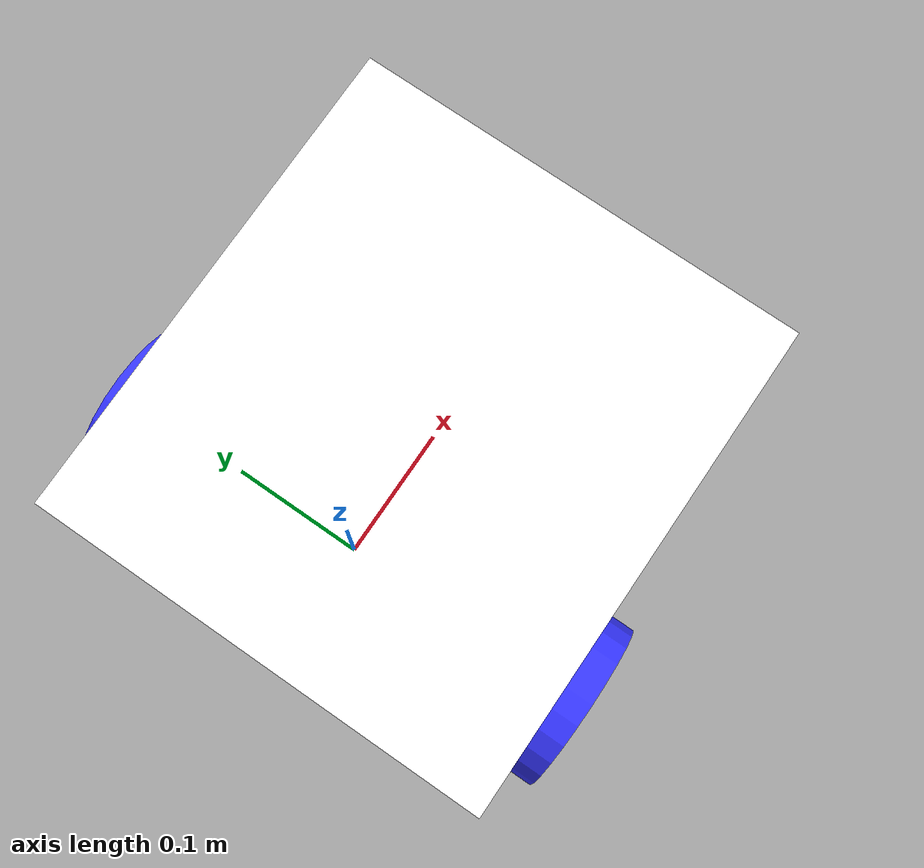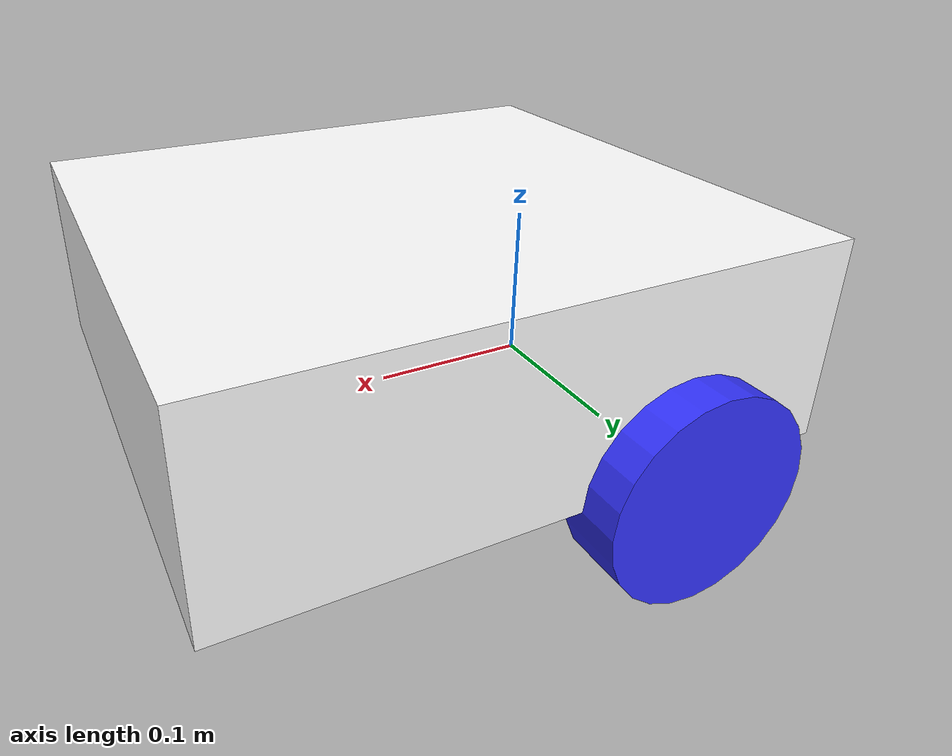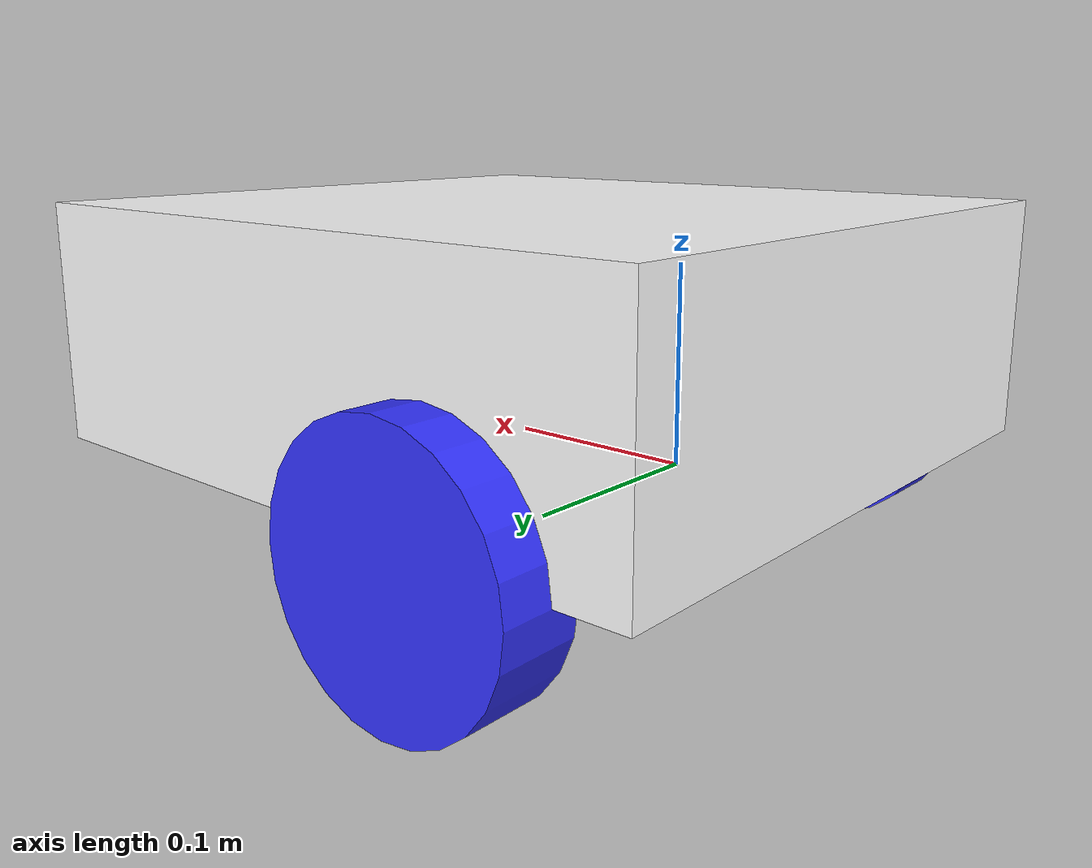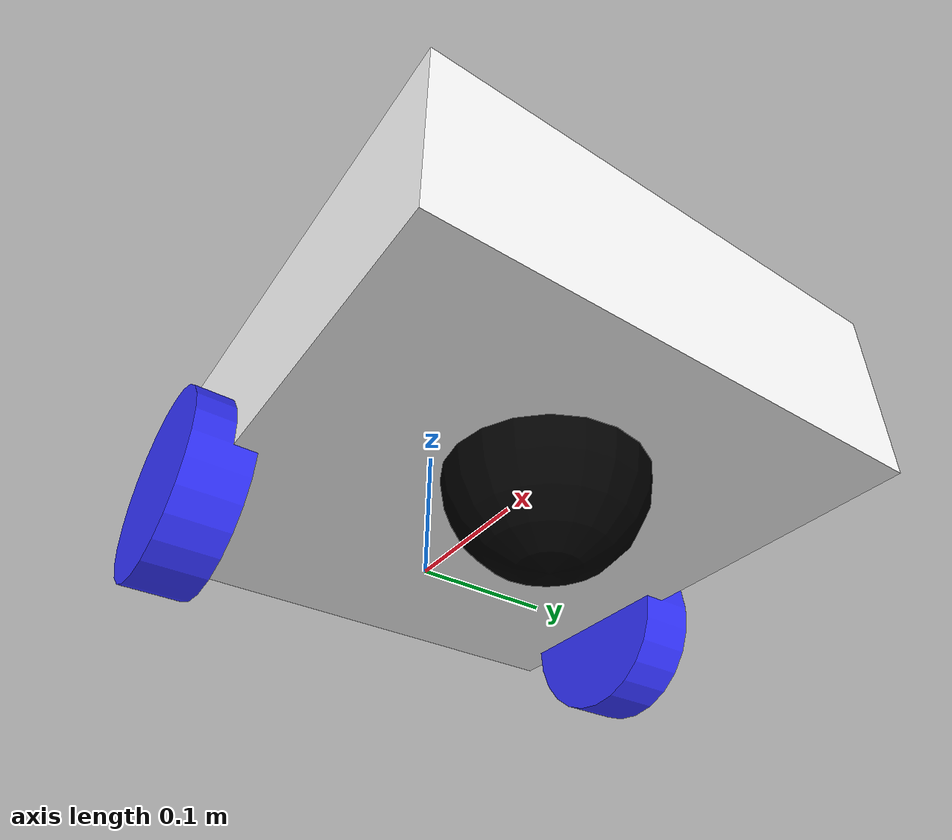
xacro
<?xml version="1.0"?>
<robot xmlns:xacro="http://www.ros.org/wiki/xacro" >

    <xacro:include filename="inertial_macros.xacro"/>

    <material name="white">
        <color rgba="1 1 1 1" />
    </material>

    <material name="orange">
        <color rgba="1 0.3 0.1 1" />
    </material>

    <material name="blue">
        <color rgba="0.2 0.2 1 1" />
    </material>

    <material name="black">
        <color rgba="0 0 0 1" />
    </material>

    <material name="red">
        <color rgba="1 0 0 1" />
    </material>

    <!-- BASE LINK -->

    <link name="base_link">

    </link>

    <!-- CHASSIS LINK -->

    <joint name="chassis_joint" type="fixed">
        <parent link="base_link"/>
        <child link="chassis"/>
        <origin xyz="-0.1 0 0"/>

    </joint>

    <link name="chassis">
        <visual>
            <origin xyz="0.185 0 0.0625"/>
            <geometry>
                <box size="0.37 0.34 0.125"/>
            </geometry>
            <material name="white"/>
        </visual>
        <collision>
            <origin xyz="0.185 0 0.0625"/>
            <geometry>
                <box size="0.37 0.34 0.125"/>
            </geometry>
        </collision>
        <xacro:inertial_box mass="0.5" x="0.37" y="0.34" z="0.125">
            <origin xyz="0.185 0 0.0625" rpy="0 0 0"/>
        </xacro:inertial_box>
    </link>

    <gazebo reference="chassis">
        <material>
            Gazebo/white
        </material>
    </gazebo>

    <!-- LEFT WHEEL LINK -->

    <joint name="left_wheel_joint" type="continuous">
        <parent link="base_link"/>
        <child link="left_wheel"/>
        <origin xyz="0 0.175 0" rpy="-${pi/2} 0 0"/>
        <axis xyz="0 0 1"/>
    </joint>

    <link name="left_wheel">
        <visual>
            <geometry>
                <cylinder radius="0.065" length="0.04"/>
            </geometry>
            <material name="blue" />
        </visual>
        <collision>
            <geometry>
                <cylinder radius="0.065" length="0.04"/>
            </geometry>
        </collision>
        <xacro:inertial_cylinder mass="0.1" length="0.04" radius="0.065">
            <origin xyz="0 0 0" rpy="0 0 0"/>
        </xacro:inertial_cylinder>

    </link>

    <gazebo reference="left_wheel">
        <material>
            Gazebo/Blue
        </material>
    </gazebo>
        <!-- RIGHT WHEEL LINK -->

    <joint name="right_wheel_joint" type="continuous">
        <parent link="base_link"/>
        <child link="right_wheel"/>
        <origin xyz="0 -0.175 0" rpy="${pi/2} 0 0"/>
        <axis xyz="0 0 -1"/>
    </joint>

    <link name="right_wheel">
        <visual>
            <geometry>
                <cylinder radius="0.065" length="0.04"/>
            </geometry>
            <material name="blue" />
        </visual>
        <collision>
            <geometry>
                <cylinder radius="0.065" length="0.04"/>
            </geometry>
        </collision>
        <xacro:inertial_cylinder mass="0.1" length="0.04" radius="0.065">
            <origin xyz="0 0 0" rpy="0 0 0"/>
        </xacro:inertial_cylinder>
    </link>

    <gazebo reference="right_wheel">
        <material>
            Gazebo/Blue
        </material>
    </gazebo>

    <!-- CASTER WHEEL LINK -->

    <joint name="caster_wheel_joint" type="fixed">
        <parent link="chassis"/>
        <child link="caster_wheel"/>
        <origin xyz="0.24 0 0"/>
    </joint>

    <link name="caster_wheel">
        <visual>
            <geometry>
                <sphere radius="0.065"/>
            </geometry>
            <material name="black"/>
        </visual>
        <collision>
            <geometry>
                <sphere radius="0.065"/>
            </geometry>
        </collision>
        <xacro:inertial_sphere mass="0.1" radius="0.065">
            <origin xyz="0 0 0" rpy="0 0 0"/>
        </xacro:inertial_sphere>
    </link>

        <gazebo reference="caster_wheel">
        <material>
            Gazebo/Black
        </material>
        <mu1 value="0.001"/>
        <mu2 value="0.001"/>
    </gazebo>

</robot>
